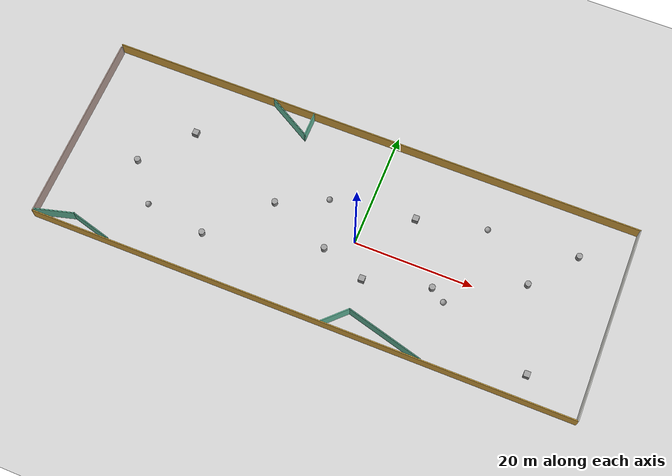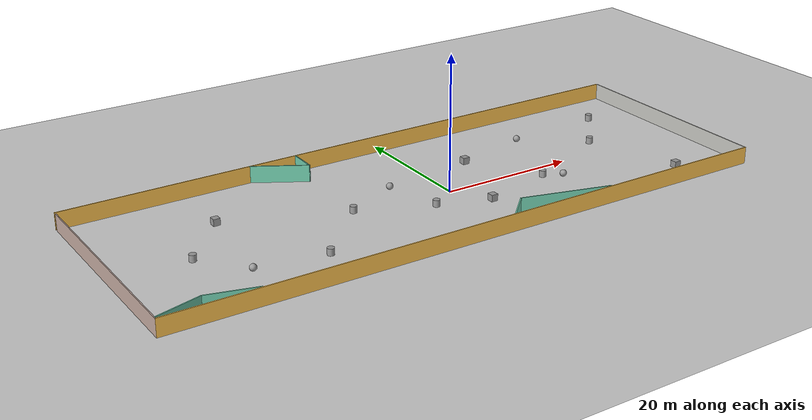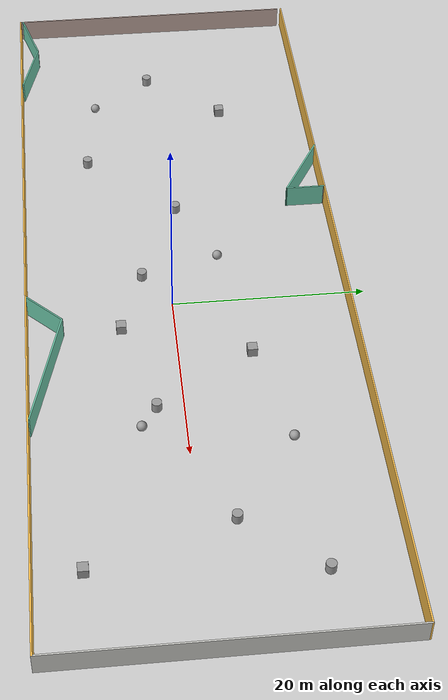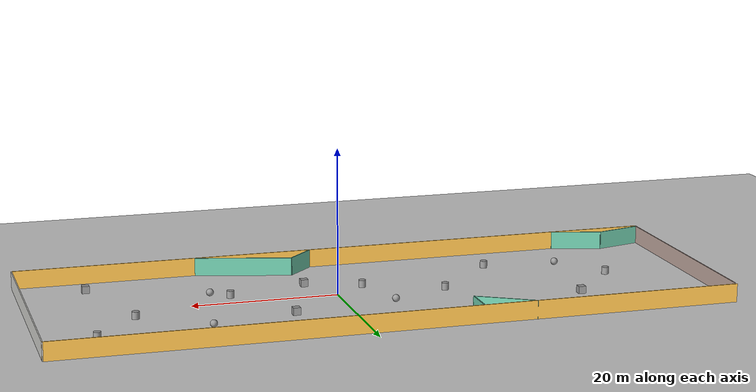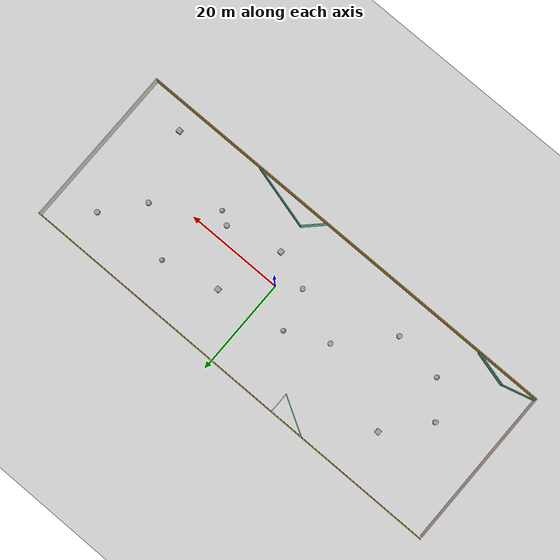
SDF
<sdf version="1.6">
 <world name="default">
  <light name="sun" type="directional">
   <pose>0 0 10 0 -0 0</pose>
   <diffuse>0.8 0.8 0.8 1</diffuse>
   <specular>0.2 0.2 0.2 1</specular>
   <attenuation>
    <range>1000</range>
    <constant>0.9</constant>
    <linear>0.01</linear>
    <quadratic>0.001</quadratic>
   </attenuation>
   <direction>-0.5 0.1 -0.9</direction>
  </light>
  <model name="ground_plane">
   <static>1</static>
   <link name="link">
    <collision name="collision">
     <geometry><plane><normal>0 0 1</normal><size>100 100</size></plane></geometry>
     <surface>
      <contact><collide_bitmask>65535</collide_bitmask></contact>
      <friction><ode><mu>100</mu><mu2>50</mu2></ode></friction>
     </surface>
    </collision>
    <visual name="visual">
     <cast_shadows>0</cast_shadows>
     <geometry><plane><normal>0 0 1</normal><size>100 100</size></plane></geometry>
     <material>
      <script><uri>file://media/materials/scripts/gazebo.material</uri><name>Gazebo/Grey</name></script>
     </material>
    </visual>
   </link>
  </model>
  <gravity>0 0 -9.8</gravity>
  <magnetic_field>6e-06 2.3e-05 -4.2e-05</magnetic_field>
  <atmosphere type="adiabatic"/>
  <physics name="default_physics" default="0" type="ode">
   <max_step_size>0.001</max_step_size>
   <real_time_factor>1</real_time_factor>
   <real_time_update_rate>1000</real_time_update_rate>
  </physics>
  <scene><ambient>0.4 0.4 0.4 1</ambient><background>0.7 0.7 0.7 1</background><shadows>1</shadows></scene>
  <audio><device>default</device></audio>
  <spherical_coordinates>
   <surface_model>EARTH_WGS84</surface_model>
   <latitude_deg>0</latitude_deg>
   <longitude_deg>0</longitude_deg>
   <elevation>0</elevation>
   <heading_deg>0</heading_deg>
  </spherical_coordinates>
  <model name="rect_room">
   <pose>-4.03167 1.5628 0 0 -0 0</pose>
   <link name="Wall_0">
    <collision name="Wall_0_Collision">
     <geometry><box><size>32.75 0.15 2.5</size></box></geometry>
     <pose>0 0 1.25 0 -0 0</pose>
    </collision>
    <visual name="Wall_0_Visual">
     <pose>0 0 1.25 0 -0 0</pose>
     <geometry><box><size>32.75 0.15 2.5</size></box></geometry>
     <material>
      <script><uri>file://media/materials/scripts/gazebo.material</uri><name>Gazebo/Grey</name></script>
      <ambient>0.760784 0.662745 0.627451 1</ambient>
     </material>
     <meta><layer>0</layer></meta>
    </visual>
    <pose>-45.8 -0.258458 0 0 -0 -1.5708</pose>
   </link>
   <link name="Wall_1">
    <collision name="Wall_1_Collision">
     <geometry><box><size>91.75 0.15 2.5</size></box></geometry>
     <pose>0 0 1.25 0 -0 0</pose>
    </collision>
    <visual name="Wall_1_Visual">
     <pose>0 0 1.25 0 -0 0</pose>
     <geometry><box><size>91.75 0.15 2.5</size></box></geometry>
     <material>
      <script><uri>file://media/materials/scripts/gazebo.material</uri><name>Gazebo/Grey</name></script>
      <ambient>1 0.764706 0.305882 1</ambient>
     </material>
     <meta><layer>0</layer></meta>
    </visual>
    <pose>-0 -16.5585 0 0 -0 0</pose>
   </link>
   <link name="Wall_12">
    <collision name="Wall_12_Collision">
     <geometry><box><size>8.5 0.15 2.5</size></box></geometry>
     <pose>0 0 1.25 0 -0 0</pose>
    </collision>
    <visual name="Wall_12_Visual">
     <pose>0 0 1.25 0 -0 0</pose>
     <geometry><box><size>8.5 0.15 2.5</size></box></geometry>
     <material>
      <script><uri>file://media/materials/scripts/gazebo.material</uri><name>Gazebo/Grey</name></script>
      <ambient>0.435294 0.796078 0.67451 1</ambient>
     </material>
     <meta><layer>0</layer></meta>
    </visual>
    <pose>-14.0654 14.4435 0 0 -0 -0.523599</pose>
   </link>
   <link name="Wall_13">
    <collision name="Wall_13_Collision">
     <geometry><box><size>4.25 0.15 2.5</size></box></geometry>
     <pose>0 0 1.25 0 -0 0</pose>
    </collision>
    <visual name="Wall_13_Visual">
     <pose>0 0 1.25 0 -0 0</pose>
     <geometry><box><size>4.25 0.15 2.5</size></box></geometry>
     <material>
      <script><uri>file://media/materials/scripts/gazebo.material</uri><name>Gazebo/Grey</name></script>
      <ambient>0.435294 0.796078 0.67451 1</ambient>
     </material>
     <meta><layer>0</layer></meta>
    </visual>
    <pose>-10.4497 14.406 0 0 -0 1.5708</pose>
   </link>
   <link name="Wall_14">
    <collision name="Wall_14_Collision">
     <geometry><box><size>0.16 0.15 2.5</size></box></geometry>
     <pose>0 0 1.25 0 -0 0</pose>
    </collision>
    <visual name="Wall_14_Visual">
     <pose>0 0 1.25 0 -0 0</pose>
     <geometry><box><size>0.16 0.15 2.5</size></box></geometry>
     <material>
      <script><uri>file://media/materials/scripts/gazebo.material</uri><name>Gazebo/Grey</name></script>
      <ambient>1 1 1 1</ambient>
     </material>
     <meta><layer>0</layer></meta>
    </visual>
    <pose>-10.4447 16.456 0 0 -0 0</pose>
   </link>
   <link name="Wall_17">
    <collision name="Wall_17_Collision">
     <geometry><box><size>5 0.15 2.5</size></box></geometry>
     <pose>0 0 1.25 0 -0 0</pose>
    </collision>
    <visual name="Wall_17_Visual">
     <pose>0 0 1.25 0 -0 0</pose>
     <geometry><box><size>5 0.15 2.5</size></box></geometry>
     <material>
      <script><uri>file://media/materials/scripts/gazebo.material</uri><name>Gazebo/Grey</name></script>
      <ambient>0.435294 0.796078 0.67451 1</ambient>
     </material>
     <meta><layer>0</layer></meta>
    </visual>
    <pose>5.90034 -14.6746 0 0 -0 0.785398</pose>
   </link>
   <link name="Wall_18">
    <collision name="Wall_18_Collision">
     <geometry><box><size>13.5 0.15 2.5</size></box></geometry>
     <pose>0 0 1.25 0 -0 0</pose>
    </collision>
    <visual name="Wall_18_Visual">
     <pose>0 0 1.25 0 -0 0</pose>
     <geometry><box><size>13.5 0.15 2.5</size></box></geometry>
     <material>
      <script><uri>file://media/materials/scripts/gazebo.material</uri><name>Gazebo/Grey</name></script>
      <ambient>0.435294 0.796078 0.67451 1</ambient>
     </material>
     <meta><layer>0</layer></meta>
    </visual>
    <pose>14.0626 -14.6875 0 0 -0 -0.261799</pose>
   </link>
   <link name="Wall_2">
    <collision name="Wall_2_Collision">
     <geometry><box><size>33.25 0.15 2.5</size></box></geometry>
     <pose>0 0 1.25 0 -0 0</pose>
    </collision>
    <visual name="Wall_2_Visual">
     <pose>0 0 1.25 0 -0 0</pose>
     <geometry><box><size>33.25 0.15 2.5</size></box></geometry>
     <material>
      <script><uri>file://media/materials/scripts/gazebo.material</uri><name>Gazebo/CeilingTiled</name></script>
      <ambient>0.760784 0.662745 0.627451 1</ambient>
     </material>
     <meta><layer>0</layer></meta>
    </visual>
    <pose>45.8 -0.008458 0 0 -0 1.5708</pose>
   </link>
   <link name="Wall_3">
    <collision name="Wall_3_Collision">
     <geometry><box><size>91.75 0.15 2.5</size></box></geometry>
     <pose>0 0 1.25 0 -0 0</pose>
    </collision>
    <visual name="Wall_3_Visual">
     <pose>0 0 1.25 0 -0 0</pose>
     <geometry><box><size>91.75 0.15 2.5</size></box></geometry>
     <material>
      <script><uri>file://media/materials/scripts/gazebo.material</uri><name>Gazebo/Grey</name></script>
      <ambient>1 0.764706 0.305882 1</ambient>
     </material>
     <meta><layer>0</layer></meta>
    </visual>
    <pose>-0 16.5415 0 0 -0 3.14159</pose>
   </link>
   <link name="Wall_5">
    <collision name="Wall_5_Collision">
     <geometry><box><size>6.75 0.15 2.5</size></box></geometry>
     <pose>0 0 1.25 0 -0 0</pose>
    </collision>
    <visual name="Wall_5_Visual">
     <pose>0 0 1.25 0 -0 0</pose>
     <geometry><box><size>6.75 0.15 2.5</size></box></geometry>
     <material>
      <script><uri>file://media/materials/scripts/gazebo.material</uri><name>Gazebo/Grey</name></script>
      <ambient>0.435294 0.796078 0.67451 1</ambient>
     </material>
     <meta><layer>0</layer></meta>
    </visual>
    <pose>-42.5417 -15.3696 0 0 -0 0.261799</pose>
   </link>
   <link name="Wall_6">
    <collision name="Wall_6_Collision">
     <geometry><box><size>7.25 0.15 2.5</size></box></geometry>
     <pose>0 0 1.25 0 -0 0</pose>
    </collision>
    <visual name="Wall_6_Visual">
     <pose>0 0 1.25 0 -0 0</pose>
     <geometry><box><size>7.25 0.15 2.5</size></box></geometry>
     <material>
      <script><uri>file://media/materials/scripts/gazebo.material</uri><name>Gazebo/Grey</name></script>
      <ambient>0.435294 0.796078 0.67451 1</ambient>
     </material>
     <meta><layer>0</layer></meta>
    </visual>
    <pose>-35.9251 -15.4343 0 0 -0 -0.261799</pose>
   </link>
   <static>1</static>
  </model>
  <model name="unit_box">
   <pose>7.63579 7.35452 0.499995 0 1e-05 0</pose>
   <link name="link">
    <inertial>
     <mass>1</mass>
     <inertia>
      <ixx>0.166667</ixx>
      <ixy>0</ixy>
      <ixz>0</ixz>
      <iyy>0.166667</iyy>
      <iyz>0</iyz>
      <izz>0.166667</izz>
     </inertia>
    </inertial>
    <collision name="collision"><geometry><box><size>1 1 1</size></box></geometry></collision>
    <visual name="visual">
     <geometry><box><size>1 1 1</size></box></geometry>
     <material>
      <script><name>Gazebo/Grey</name><uri>file://media/materials/scripts/gazebo.material</uri></script>
     </material>
    </visual>
   </link>
  </model>
  <model name="unit_box_0">
   <pose>3.31839 -5.48757 0.499995 -1e-05 -0 -0</pose>
   <link name="link">
    <inertial>
     <mass>1</mass>
     <inertia>
      <ixx>0.166667</ixx>
      <ixy>0</ixy>
      <ixz>0</ixz>
      <iyy>0.166667</iyy>
      <iyz>0</iyz>
      <izz>0.166667</izz>
     </inertia>
    </inertial>
    <collision name="collision"><geometry><box><size>1 1 1</size></box></geometry></collision>
    <visual name="visual">
     <geometry><box><size>1 1 1</size></box></geometry>
     <material>
      <script><name>Gazebo/Grey</name><uri>file://media/materials/scripts/gazebo.material</uri></script>
     </material>
    </visual>
   </link>
  </model>
  <model name="unit_cylinder">
   <pose>-4.20921 -2.86652 0.499992 -3e-06 3e-06 0</pose>
   <link name="link">
    <inertial>
     <mass>1</mass>
     <inertia><ixx>0.145833</ixx><ixy>0</ixy><ixz>0</ixz><iyy>0.145833</iyy><iyz>0</iyz><izz>0.125</izz></inertia>
    </inertial>
    <collision name="collision">
     <geometry><cylinder><radius>0.5</radius><length>1</length></cylinder></geometry>
    </collision>
    <visual name="visual">
     <geometry><cylinder><radius>0.5</radius><length>1</length></cylinder></geometry>
     <material>
      <script><name>Gazebo/Grey</name><uri>file://media/materials/scripts/gazebo.material</uri></script>
     </material>
    </visual>
   </link>
  </model>
  <model name="unit_sphere">
   <pose>-6.5353 5.34183 0.5 0 -0 0</pose>
   <link name="link">
    <inertial>
     <mass>1</mass>
     <inertia><ixx>0.1</ixx><ixy>0</ixy><ixz>0</ixz><iyy>0.1</iyy><iyz>0</iyz><izz>0.1</izz></inertia>
    </inertial>
    <collision name="collision"><geometry><sphere><radius>0.5</radius></sphere></geometry></collision>
    <visual name="visual">
     <geometry><sphere><radius>0.5</radius></sphere></geometry>
     <material>
      <script><name>Gazebo/Grey</name><uri>file://media/materials/scripts/gazebo.material</uri></script>
     </material>
    </visual>
   </link>
  </model>
  <model name="unit_sphere_0">
   <pose>16.6248 -4.30817 0.5 0 -0 0</pose>
   <link name="link">
    <inertial>
     <mass>1</mass>
     <inertia><ixx>0.1</ixx><ixy>0</ixy><ixz>0</ixz><iyy>0.1</iyy><iyz>0</iyz><izz>0.1</izz></inertia>
    </inertial>
    <collision name="collision"><geometry><sphere><radius>0.5</radius></sphere></geometry></collision>
    <visual name="visual">
     <geometry><sphere><radius>0.5</radius></sphere></geometry>
     <material>
      <script><name>Gazebo/Grey</name><uri>file://media/materials/scripts/gazebo.material</uri></script>
     </material>
    </visual>
   </link>
  </model>
  <model name="unit_sphere_1">
   <pose>19.0806 9.95175 0.5 0 -0 0</pose>
   <link name="link">
    <inertial>
     <mass>1</mass>
     <inertia><ixx>0.1</ixx><ixy>0</ixy><ixz>0</ixz><iyy>0.1</iyy><iyz>0</iyz><izz>0.1</izz></inertia>
    </inertial>
    <collision name="collision"><geometry><sphere><radius>0.5</radius></sphere></geometry></collision>
    <visual name="visual">
     <geometry><sphere><radius>0.5</radius></sphere></geometry>
     <material>
      <script><name>Gazebo/Grey</name><uri>file://media/materials/scripts/gazebo.material</uri></script>
     </material>
    </visual>
   </link>
  </model>
  <model name="unit_cylinder_0">
   <pose>14.1609 -2.70486 0.499992 -3e-06 4e-06 0</pose>
   <link name="link">
    <inertial>
     <mass>1</mass>
     <inertia><ixx>0.145833</ixx><ixy>0</ixy><ixz>0</ixz><iyy>0.145833</iyy><iyz>0</iyz><izz>0.125</izz></inertia>
    </inertial>
    <collision name="collision">
     <geometry><cylinder><radius>0.5</radius><length>1</length></cylinder></geometry>
    </collision>
    <visual name="visual">
     <geometry><cylinder><radius>0.5</radius><length>1</length></cylinder></geometry>
     <material>
      <script><name>Gazebo/Grey</name><uri>file://media/materials/scripts/gazebo.material</uri></script>
     </material>
    </visual>
   </link>
  </model>
  <model name="unit_cylinder_1">
   <pose>-14.6681 1.53529 0.499998 3e-06 -4e-06 0</pose>
   <link name="link">
    <inertial>
     <mass>1</mass>
     <inertia><ixx>0.145833</ixx><ixy>0</ixy><ixz>0</ixz><iyy>0.145833</iyy><iyz>0</iyz><izz>0.125</izz></inertia>
    </inertial>
    <collision name="collision">
     <geometry><cylinder><radius>0.5</radius><length>1</length></cylinder></geometry>
    </collision>
    <visual name="visual">
     <geometry><cylinder><radius>0.5</radius><length>1</length></cylinder></geometry>
     <material>
      <script><name>Gazebo/Grey</name><uri>file://media/materials/scripts/gazebo.material</uri></script>
     </material>
    </visual>
   </link>
  </model>
  <model name="unit_box_1">
   <pose>-31.7851 8.22226 0.499995 0 1e-05 0</pose>
   <link name="link">
    <inertial>
     <mass>1</mass>
     <inertia>
      <ixx>0.166667</ixx>
      <ixy>0</ixy>
      <ixz>0</ixz>
      <iyy>0.166667</iyy>
      <iyz>0</iyz>
      <izz>0.166667</izz>
     </inertia>
    </inertial>
    <collision name="collision"><geometry><box><size>1 1 1</size></box></geometry></collision>
    <visual name="visual">
     <geometry><box><size>1 1 1</size></box></geometry>
     <material>
      <script><name>Gazebo/Grey</name><uri>file://media/materials/scripts/gazebo.material</uri></script>
     </material>
    </visual>
   </link>
  </model>
  <model name="unit_sphere_2">
   <pose>-33.6062 -6.40372 0.5 0 -0 0</pose>
   <link name="link">
    <inertial>
     <mass>1</mass>
     <inertia><ixx>0.1</ixx><ixy>0</ixy><ixz>0</ixz><iyy>0.1</iyy><iyz>0</iyz><izz>0.1</izz></inertia>
    </inertial>
    <collision name="collision"><geometry><sphere><radius>0.5</radius></sphere></geometry></collision>
    <visual name="visual">
     <geometry><sphere><radius>0.5</radius></sphere></geometry>
     <material>
      <script><name>Gazebo/Grey</name><uri>file://media/materials/scripts/gazebo.material</uri></script>
     </material>
    </visual>
   </link>
  </model>
  <model name="unit_cylinder_2">
   <pose>-38.687 0.099027 0.499992 -3e-06 -4e-06 -0</pose>
   <link name="link">
    <inertial>
     <mass>1</mass>
     <inertia><ixx>0.145833</ixx><ixy>0</ixy><ixz>0</ixz><iyy>0.145833</iyy><iyz>0</iyz><izz>0.125</izz></inertia>
    </inertial>
    <collision name="collision">
     <geometry><cylinder><radius>0.5</radius><length>1</length></cylinder></geometry>
    </collision>
    <visual name="visual">
     <geometry><cylinder><radius>0.5</radius><length>1</length></cylinder></geometry>
     <material>
      <script><name>Gazebo/Grey</name><uri>file://media/materials/scripts/gazebo.material</uri></script>
     </material>
    </visual>
   </link>
  </model>
  <model name="unit_cylinder_3">
   <pose>-23.4622 -7.74601 0.499993 -3e-06 -3e-06 0</pose>
   <link name="link">
    <inertial>
     <mass>1</mass>
     <inertia><ixx>0.145833</ixx><ixy>0</ixy><ixz>0</ixz><iyy>0.145833</iyy><iyz>0</iyz><izz>0.125</izz></inertia>
    </inertial>
    <collision name="collision">
     <geometry><cylinder><radius>0.5</radius><length>1</length></cylinder></geometry>
    </collision>
    <visual name="visual">
     <geometry><cylinder><radius>0.5</radius><length>1</length></cylinder></geometry>
     <material>
      <script><name>Gazebo/Grey</name><uri>file://media/materials/scripts/gazebo.material</uri></script>
     </material>
    </visual>
   </link>
  </model>
  <model name="unit_box_2">
   <pose>32.4574 -10.5261 0.499995 0 1e-05 0</pose>
   <link name="link">
    <inertial>
     <mass>1</mass>
     <inertia>
      <ixx>0.166667</ixx>
      <ixy>0</ixy>
      <ixz>0</ixz>
      <iyy>0.166667</iyy>
      <iyz>0</iyz>
      <izz>0.166667</izz>
     </inertia>
    </inertial>
    <collision name="collision"><geometry><box><size>1 1 1</size></box></geometry></collision>
    <visual name="visual">
     <geometry><box><size>1 1 1</size></box></geometry>
     <material>
      <script><name>Gazebo/Grey</name><uri>file://media/materials/scripts/gazebo.material</uri></script>
     </material>
    </visual>
   </link>
  </model>
  <model name="unit_cylinder_4">
   <pose>28.0031 3.47954 0.499997 3e-06 4e-06 -0</pose>
   <link name="link">
    <inertial>
     <mass>1</mass>
     <inertia><ixx>0.145833</ixx><ixy>0</ixy><ixz>0</ixz><iyy>0.145833</iyy><iyz>0</iyz><izz>0.125</izz></inertia>
    </inertial>
    <collision name="collision">
     <geometry><cylinder><radius>0.5</radius><length>1</length></cylinder></geometry>
    </collision>
    <visual name="visual">
     <geometry><cylinder><radius>0.5</radius><length>1</length></cylinder></geometry>
     <material>
      <script><name>Gazebo/Grey</name><uri>file://media/materials/scripts/gazebo.material</uri></script>
     </material>
    </visual>
   </link>
  </model>
  <model name="unit_cylinder_5">
   <pose>34.1117 10.9726 0.499997 3e-06 4e-06 -0</pose>
   <link name="link">
    <inertial>
     <mass>1</mass>
     <inertia><ixx>0.145833</ixx><ixy>0</ixy><ixz>0</ixz><iyy>0.145833</iyy><iyz>0</iyz><izz>0.125</izz></inertia>
    </inertial>
    <collision name="collision">
     <geometry><cylinder><radius>0.5</radius><length>1</length></cylinder></geometry>
    </collision>
    <visual name="visual">
     <geometry><cylinder><radius>0.5</radius><length>1</length></cylinder></geometry>
     <material>
      <script><name>Gazebo/Grey</name><uri>file://media/materials/scripts/gazebo.material</uri></script>
     </material>
    </visual>
   </link>
  </model>
 </world>
</sdf>
